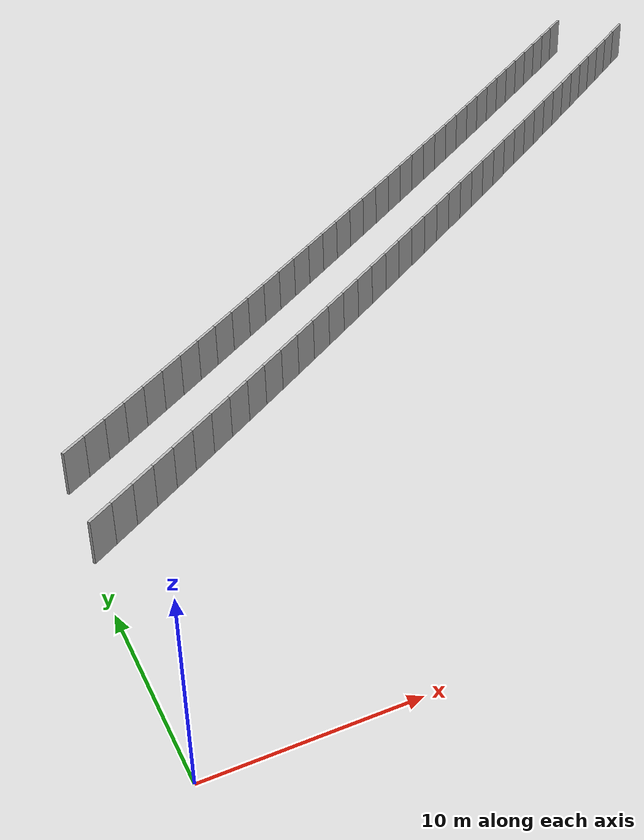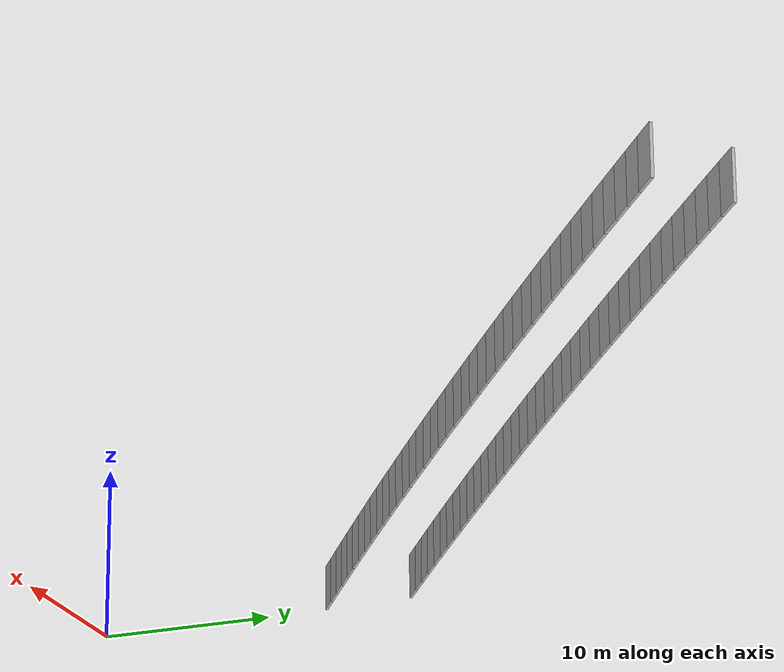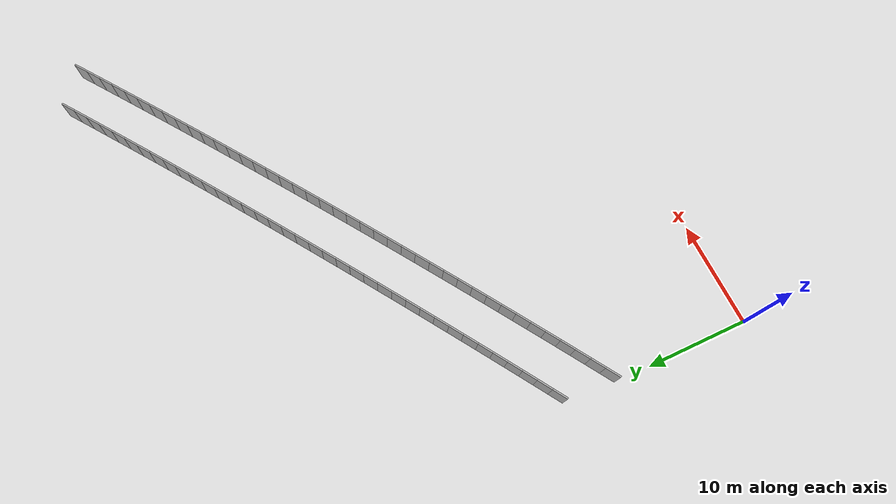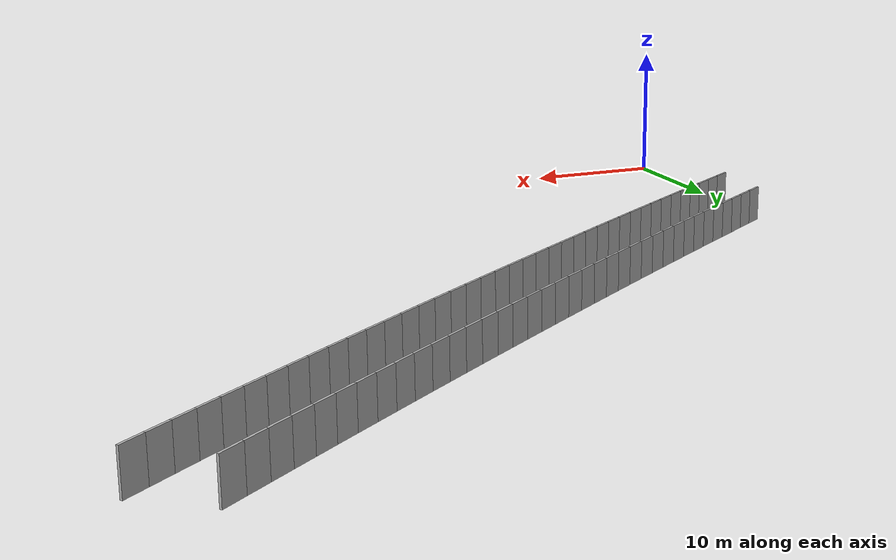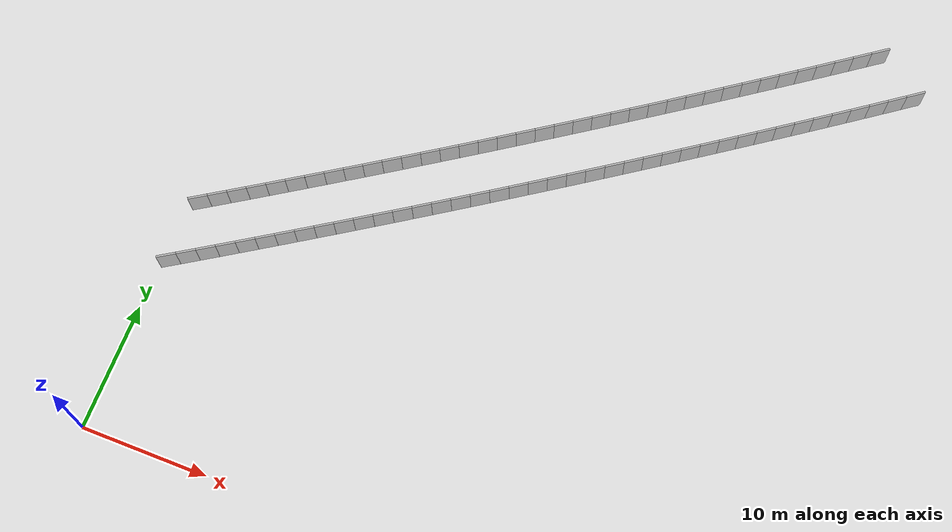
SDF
<?xml version="1.0" ?>
<sdf version="1.6">
  <model name="sps_3606">
    <pose frame="">0 0 0 0 -0 0</pose>
    <static>1</static>
    <self_collide>0</self_collide>
    <allow_auto_disable>0</allow_auto_disable>
    <link name="Wall4025">
      <kinematic>0</kinematic>
      <gravity>1</gravity>
      <self_collide>0</self_collide>
      <collision name="collision">
        <geometry>
          <box>
            <size>1.49655 0.15 2.5</size>
          </box>
        </geometry>
        <pose frame="">0 0 0 0 -0 0</pose>
      </collision>
      <visual name="visual">
        <geometry>
          <box>
            <size>1.49655 0.15 2.5</size>
          </box>
        </geometry>
        <pose frame="">0 0 0 0 -0 0</pose>
        <cast_shadows>1</cast_shadows>
        <transparency>0.0</transparency>
      </visual>
      <pose frame="">1.08144 19.0442 1.25 0 -0 0.571431</pose>
    </link>
    <link name="Wall4026">
      <kinematic>0</kinematic>
      <gravity>1</gravity>
      <self_collide>0</self_collide>
      <collision name="collision">
        <geometry>
          <box>
            <size>1.49672 0.15 2.5</size>
          </box>
        </geometry>
        <pose frame="">0 0 0 0 -0 0</pose>
      </collision>
      <visual name="visual">
        <geometry>
          <box>
            <size>1.49672 0.15 2.5</size>
          </box>
        </geometry>
        <pose frame="">0 0 0 0 -0 0</pose>
        <cast_shadows>1</cast_shadows>
        <transparency>0.0</transparency>
      </visual>
      <pose frame="">2.33974 19.8545 1.25 0 -0 0.572812</pose>
    </link>
    <link name="Wall4027">
      <kinematic>0</kinematic>
      <gravity>1</gravity>
      <self_collide>0</self_collide>
      <collision name="collision">
        <geometry>
          <box>
            <size>1.49635 0.15 2.5</size>
          </box>
        </geometry>
        <pose frame="">0 0 0 0 -0 0</pose>
      </collision>
      <visual name="visual">
        <geometry>
          <box>
            <size>1.49635 0.15 2.5</size>
          </box>
        </geometry>
        <pose frame="">0 0 0 0 -0 0</pose>
        <cast_shadows>1</cast_shadows>
        <transparency>0.0</transparency>
      </visual>
      <pose frame="">3.59676 20.6666 1.25 0 -0 0.574381</pose>
    </link>
    <link name="Wall4028">
      <kinematic>0</kinematic>
      <gravity>1</gravity>
      <self_collide>0</self_collide>
      <collision name="collision">
        <geometry>
          <box>
            <size>1.49665 0.15 2.5</size>
          </box>
        </geometry>
        <pose frame="">0 0 0 0 -0 0</pose>
      </collision>
      <visual name="visual">
        <geometry>
          <box>
            <size>1.49665 0.15 2.5</size>
          </box>
        </geometry>
        <pose frame="">0 0 0 0 -0 0</pose>
        <cast_shadows>1</cast_shadows>
        <transparency>0.0</transparency>
      </visual>
      <pose frame="">4.85238 21.4808 1.25 0 -0 0.576194</pose>
    </link>
    <link name="Wall4029">
      <kinematic>0</kinematic>
      <gravity>1</gravity>
      <self_collide>0</self_collide>
      <collision name="collision">
        <geometry>
          <box>
            <size>1.49649 0.15 2.5</size>
          </box>
        </geometry>
        <pose frame="">0 0 0 0 -0 0</pose>
      </collision>
      <visual name="visual">
        <geometry>
          <box>
            <size>1.49649 0.15 2.5</size>
          </box>
        </geometry>
        <pose frame="">0 0 0 0 -0 0</pose>
        <cast_shadows>1</cast_shadows>
        <transparency>0.0</transparency>
      </visual>
      <pose frame="">6.10677 22.297 1.25 0 -0 0.577528</pose>
    </link>
    <link name="Wall4030">
      <kinematic>0</kinematic>
      <gravity>1</gravity>
      <self_collide>0</self_collide>
      <collision name="collision">
        <geometry>
          <box>
            <size>1.49649 0.15 2.5</size>
          </box>
        </geometry>
        <pose frame="">0 0 0 0 -0 0</pose>
      </collision>
      <visual name="visual">
        <geometry>
          <box>
            <size>1.49649 0.15 2.5</size>
          </box>
        </geometry>
        <pose frame="">0 0 0 0 -0 0</pose>
        <cast_shadows>1</cast_shadows>
        <transparency>0.0</transparency>
      </visual>
      <pose frame="">7.35985 23.1151 1.25 0 -0 0.579236</pose>
    </link>
    <link name="Wall4031">
      <kinematic>0</kinematic>
      <gravity>1</gravity>
      <self_collide>0</self_collide>
      <collision name="collision">
        <geometry>
          <box>
            <size>1.49665 0.15 2.5</size>
          </box>
        </geometry>
        <pose frame="">0 0 0 0 -0 0</pose>
      </collision>
      <visual name="visual">
        <geometry>
          <box>
            <size>1.49665 0.15 2.5</size>
          </box>
        </geometry>
        <pose frame="">0 0 0 0 -0 0</pose>
        <cast_shadows>1</cast_shadows>
        <transparency>0.0</transparency>
      </visual>
      <pose frame="">8.61166 23.9353 1.25 0 -0 0.58082</pose>
    </link>
    <link name="Wall4032">
      <kinematic>0</kinematic>
      <gravity>1</gravity>
      <self_collide>0</self_collide>
      <collision name="collision">
        <geometry>
          <box>
            <size>1.49655 0.15 2.5</size>
          </box>
        </geometry>
        <pose frame="">0 0 0 0 -0 0</pose>
      </collision>
      <visual name="visual">
        <geometry>
          <box>
            <size>1.49655 0.15 2.5</size>
          </box>
        </geometry>
        <pose frame="">0 0 0 0 -0 0</pose>
        <cast_shadows>1</cast_shadows>
        <transparency>0.0</transparency>
      </visual>
      <pose frame="">9.86217 24.7575 1.25 0 -0 0.582426</pose>
    </link>
    <link name="Wall4033">
      <kinematic>0</kinematic>
      <gravity>1</gravity>
      <self_collide>0</self_collide>
      <collision name="collision">
        <geometry>
          <box>
            <size>1.49654 0.15 2.5</size>
          </box>
        </geometry>
        <pose frame="">0 0 0 0 -0 0</pose>
      </collision>
      <visual name="visual">
        <geometry>
          <box>
            <size>1.49654 0.15 2.5</size>
          </box>
        </geometry>
        <pose frame="">0 0 0 0 -0 0</pose>
        <cast_shadows>1</cast_shadows>
        <transparency>0.0</transparency>
      </visual>
      <pose frame="">11.1114 25.5816 1.25 0 -0 0.583897</pose>
    </link>
    <link name="Wall4034">
      <kinematic>0</kinematic>
      <gravity>1</gravity>
      <self_collide>0</self_collide>
      <collision name="collision">
        <geometry>
          <box>
            <size>1.49648 0.15 2.5</size>
          </box>
        </geometry>
        <pose frame="">0 0 0 0 -0 0</pose>
      </collision>
      <visual name="visual">
        <geometry>
          <box>
            <size>1.49648 0.15 2.5</size>
          </box>
        </geometry>
        <pose frame="">0 0 0 0 -0 0</pose>
        <cast_shadows>1</cast_shadows>
        <transparency>0.0</transparency>
      </visual>
      <pose frame="">12.3593 26.4076 1.25 0 -0 0.585537</pose>
    </link>
    <link name="Wall4035">
      <kinematic>0</kinematic>
      <gravity>1</gravity>
      <self_collide>0</self_collide>
      <collision name="collision">
        <geometry>
          <box>
            <size>1.49639 0.15 2.5</size>
          </box>
        </geometry>
        <pose frame="">0 0 0 0 -0 0</pose>
      </collision>
      <visual name="visual">
        <geometry>
          <box>
            <size>1.49639 0.15 2.5</size>
          </box>
        </geometry>
        <pose frame="">0 0 0 0 -0 0</pose>
        <cast_shadows>1</cast_shadows>
        <transparency>0.0</transparency>
      </visual>
      <pose frame="">13.6058 27.2356 1.25 0 -0 0.587143</pose>
    </link>
    <link name="Wall4036">
      <kinematic>0</kinematic>
      <gravity>1</gravity>
      <self_collide>0</self_collide>
      <collision name="collision">
        <geometry>
          <box>
            <size>1.4965 0.15 2.5</size>
          </box>
        </geometry>
        <pose frame="">0 0 0 0 -0 0</pose>
      </collision>
      <visual name="visual">
        <geometry>
          <box>
            <size>1.4965 0.15 2.5</size>
          </box>
        </geometry>
        <pose frame="">0 0 0 0 -0 0</pose>
        <cast_shadows>1</cast_shadows>
        <transparency>0.0</transparency>
      </visual>
      <pose frame="">14.8509 28.0656 1.25 0 -0 0.588715</pose>
    </link>
    <link name="Wall4037">
      <kinematic>0</kinematic>
      <gravity>1</gravity>
      <self_collide>0</self_collide>
      <collision name="collision">
        <geometry>
          <box>
            <size>1.4966 0.15 2.5</size>
          </box>
        </geometry>
        <pose frame="">0 0 0 0 -0 0</pose>
      </collision>
      <visual name="visual">
        <geometry>
          <box>
            <size>1.4966 0.15 2.5</size>
          </box>
        </geometry>
        <pose frame="">0 0 0 0 -0 0</pose>
        <cast_shadows>1</cast_shadows>
        <transparency>0.0</transparency>
      </visual>
      <pose frame="">16.0948 28.8977 1.25 0 -0 0.590434</pose>
    </link>
    <link name="Wall4038">
      <kinematic>0</kinematic>
      <gravity>1</gravity>
      <self_collide>0</self_collide>
      <collision name="collision">
        <geometry>
          <box>
            <size>1.49651 0.15 2.5</size>
          </box>
        </geometry>
        <pose frame="">0 0 0 0 -0 0</pose>
      </collision>
      <visual name="visual">
        <geometry>
          <box>
            <size>1.49651 0.15 2.5</size>
          </box>
        </geometry>
        <pose frame="">0 0 0 0 -0 0</pose>
        <cast_shadows>1</cast_shadows>
        <transparency>0.0</transparency>
      </visual>
      <pose frame="">17.3375 29.7317 1.25 0 -0 0.591803</pose>
    </link>
    <link name="Wall4039">
      <kinematic>0</kinematic>
      <gravity>1</gravity>
      <self_collide>0</self_collide>
      <collision name="collision">
        <geometry>
          <box>
            <size>1.49654 0.15 2.5</size>
          </box>
        </geometry>
        <pose frame="">0 0 0 0 -0 0</pose>
      </collision>
      <visual name="visual">
        <geometry>
          <box>
            <size>1.49654 0.15 2.5</size>
          </box>
        </geometry>
        <pose frame="">0 0 0 0 -0 0</pose>
        <cast_shadows>1</cast_shadows>
        <transparency>0.0</transparency>
      </visual>
      <pose frame="">18.5788 30.5676 1.25 0 -0 0.593511</pose>
    </link>
    <link name="Wall4040">
      <kinematic>0</kinematic>
      <gravity>1</gravity>
      <self_collide>0</self_collide>
      <collision name="collision">
        <geometry>
          <box>
            <size>1.49665 0.15 2.5</size>
          </box>
        </geometry>
        <pose frame="">0 0 0 0 -0 0</pose>
      </collision>
      <visual name="visual">
        <geometry>
          <box>
            <size>1.49665 0.15 2.5</size>
          </box>
        </geometry>
        <pose frame="">0 0 0 0 -0 0</pose>
        <cast_shadows>1</cast_shadows>
        <transparency>0.0</transparency>
      </visual>
      <pose frame="">19.8187 31.4056 1.25 0 -0 0.595083</pose>
    </link>
    <link name="Wall4041">
      <kinematic>0</kinematic>
      <gravity>1</gravity>
      <self_collide>0</self_collide>
      <collision name="collision">
        <geometry>
          <box>
            <size>1.49637 0.15 2.5</size>
          </box>
        </geometry>
        <pose frame="">0 0 0 0 -0 0</pose>
      </collision>
      <visual name="visual">
        <geometry>
          <box>
            <size>1.49637 0.15 2.5</size>
          </box>
        </geometry>
        <pose frame="">0 0 0 0 -0 0</pose>
        <cast_shadows>1</cast_shadows>
        <transparency>0.0</transparency>
      </visual>
      <pose frame="">21.0573 32.2455 1.25 0 -0 0.596691</pose>
    </link>
    <link name="Wall4042">
      <kinematic>0</kinematic>
      <gravity>1</gravity>
      <self_collide>0</self_collide>
      <collision name="collision">
        <geometry>
          <box>
            <size>1.49666 0.15 2.5</size>
          </box>
        </geometry>
        <pose frame="">0 0 0 0 -0 0</pose>
      </collision>
      <visual name="visual">
        <geometry>
          <box>
            <size>1.49666 0.15 2.5</size>
          </box>
        </geometry>
        <pose frame="">0 0 0 0 -0 0</pose>
        <cast_shadows>1</cast_shadows>
        <transparency>0.0</transparency>
      </visual>
      <pose frame="">22.2946 33.0873 1.25 0 -0 0.598137</pose>
    </link>
    <link name="Wall4043">
      <kinematic>0</kinematic>
      <gravity>1</gravity>
      <self_collide>0</self_collide>
      <collision name="collision">
        <geometry>
          <box>
            <size>1.49648 0.15 2.5</size>
          </box>
        </geometry>
        <pose frame="">0 0 0 0 -0 0</pose>
      </collision>
      <visual name="visual">
        <geometry>
          <box>
            <size>1.49648 0.15 2.5</size>
          </box>
        </geometry>
        <pose frame="">0 0 0 0 -0 0</pose>
        <cast_shadows>1</cast_shadows>
        <transparency>0.0</transparency>
      </visual>
      <pose frame="">23.5307 33.9311 1.25 0 -0 0.599846</pose>
    </link>
    <link name="Wall4044">
      <kinematic>0</kinematic>
      <gravity>1</gravity>
      <self_collide>0</self_collide>
      <collision name="collision">
        <geometry>
          <box>
            <size>1.49651 0.15 2.5</size>
          </box>
        </geometry>
        <pose frame="">0 0 0 0 -0 0</pose>
      </collision>
      <visual name="visual">
        <geometry>
          <box>
            <size>1.49651 0.15 2.5</size>
          </box>
        </geometry>
        <pose frame="">0 0 0 0 -0 0</pose>
        <cast_shadows>1</cast_shadows>
        <transparency>0.0</transparency>
      </visual>
      <pose frame="">24.7653 34.7768 1.25 0 -0 0.601317</pose>
    </link>
    <link name="Wall4045">
      <kinematic>0</kinematic>
      <gravity>1</gravity>
      <self_collide>0</self_collide>
      <collision name="collision">
        <geometry>
          <box>
            <size>1.49655 0.15 2.5</size>
          </box>
        </geometry>
        <pose frame="">0 0 0 0 -0 0</pose>
      </collision>
      <visual name="visual">
        <geometry>
          <box>
            <size>1.49655 0.15 2.5</size>
          </box>
        </geometry>
        <pose frame="">0 0 0 0 -0 0</pose>
        <cast_shadows>1</cast_shadows>
        <transparency>0.0</transparency>
      </visual>
      <pose frame="">25.9986 35.6245 1.25 0 -0 0.603081</pose>
    </link>
    <link name="Wall4046">
      <kinematic>0</kinematic>
      <gravity>1</gravity>
      <self_collide>0</self_collide>
      <collision name="collision">
        <geometry>
          <box>
            <size>1.49645 0.15 2.5</size>
          </box>
        </geometry>
        <pose frame="">0 0 0 0 -0 0</pose>
      </collision>
      <visual name="visual">
        <geometry>
          <box>
            <size>1.49645 0.15 2.5</size>
          </box>
        </geometry>
        <pose frame="">0 0 0 0 -0 0</pose>
        <cast_shadows>1</cast_shadows>
        <transparency>0.0</transparency>
      </visual>
      <pose frame="">27.2304 36.4742 1.25 0 -0 0.604564</pose>
    </link>
    <link name="Wall4047">
      <kinematic>0</kinematic>
      <gravity>1</gravity>
      <self_collide>0</self_collide>
      <collision name="collision">
        <geometry>
          <box>
            <size>1.49664 0.15 2.5</size>
          </box>
        </geometry>
        <pose frame="">0 0 0 0 -0 0</pose>
      </collision>
      <visual name="visual">
        <geometry>
          <box>
            <size>1.49664 0.15 2.5</size>
          </box>
        </geometry>
        <pose frame="">0 0 0 0 -0 0</pose>
        <cast_shadows>1</cast_shadows>
        <transparency>0.0</transparency>
      </visual>
      <pose frame="">28.4611 37.3258 1.25 0 -0 0.606112</pose>
    </link>
    <link name="Wall4048">
      <kinematic>0</kinematic>
      <gravity>1</gravity>
      <self_collide>0</self_collide>
      <collision name="collision">
        <geometry>
          <box>
            <size>1.49658 0.15 2.5</size>
          </box>
        </geometry>
        <pose frame="">0 0 0 0 -0 0</pose>
      </collision>
      <visual name="visual">
        <geometry>
          <box>
            <size>1.49658 0.15 2.5</size>
          </box>
        </geometry>
        <pose frame="">0 0 0 0 -0 0</pose>
        <cast_shadows>1</cast_shadows>
        <transparency>0.0</transparency>
      </visual>
      <pose frame="">29.6904 38.1794 1.25 0 -0 0.607776</pose>
    </link>
    <link name="Wall4049">
      <kinematic>0</kinematic>
      <gravity>1</gravity>
      <self_collide>0</self_collide>
      <collision name="collision">
        <geometry>
          <box>
            <size>1.4966 0.15 2.5</size>
          </box>
        </geometry>
        <pose frame="">0 0 0 0 -0 0</pose>
      </collision>
      <visual name="visual">
        <geometry>
          <box>
            <size>1.4966 0.15 2.5</size>
          </box>
        </geometry>
        <pose frame="">0 0 0 0 -0 0</pose>
        <cast_shadows>1</cast_shadows>
        <transparency>0.0</transparency>
      </visual>
      <pose frame="">30.9183 39.035 1.25 0 -0 0.609359</pose>
    </link>
    <link name="Wall4050">
      <kinematic>0</kinematic>
      <gravity>1</gravity>
      <self_collide>0</self_collide>
      <collision name="collision">
        <geometry>
          <box>
            <size>1.4966 0.15 2.5</size>
          </box>
        </geometry>
        <pose frame="">0 0 0 0 -0 0</pose>
      </collision>
      <visual name="visual">
        <geometry>
          <box>
            <size>1.4966 0.15 2.5</size>
          </box>
        </geometry>
        <pose frame="">0 0 0 0 -0 0</pose>
        <cast_shadows>1</cast_shadows>
        <transparency>0.0</transparency>
      </visual>
      <pose frame="">32.1449 39.8925 1.25 0 -0 0.610853</pose>
    </link>
    <link name="Wall4051">
      <kinematic>0</kinematic>
      <gravity>1</gravity>
      <self_collide>0</self_collide>
      <collision name="collision">
        <geometry>
          <box>
            <size>1.49651 0.15 2.5</size>
          </box>
        </geometry>
        <pose frame="">0 0 0 0 -0 0</pose>
      </collision>
      <visual name="visual">
        <geometry>
          <box>
            <size>1.49651 0.15 2.5</size>
          </box>
        </geometry>
        <pose frame="">0 0 0 0 -0 0</pose>
        <cast_shadows>1</cast_shadows>
        <transparency>0.0</transparency>
      </visual>
      <pose frame="">33.37 40.7519 1.25 0 -0 0.61254</pose>
    </link>
    <link name="Wall4052">
      <kinematic>0</kinematic>
      <gravity>1</gravity>
      <self_collide>0</self_collide>
      <collision name="collision">
        <geometry>
          <box>
            <size>1.49638 0.15 2.5</size>
          </box>
        </geometry>
        <pose frame="">0 0 0 0 -0 0</pose>
      </collision>
      <visual name="visual">
        <geometry>
          <box>
            <size>1.49638 0.15 2.5</size>
          </box>
        </geometry>
        <pose frame="">0 0 0 0 -0 0</pose>
        <cast_shadows>1</cast_shadows>
        <transparency>0.0</transparency>
      </visual>
      <pose frame="">34.5938 41.6132 1.25 0 -0 0.614047</pose>
    </link>
    <link name="Wall4053">
      <kinematic>0</kinematic>
      <gravity>1</gravity>
      <self_collide>0</self_collide>
      <collision name="collision">
        <geometry>
          <box>
            <size>1.49658 0.15 2.5</size>
          </box>
        </geometry>
        <pose frame="">0 0 0 0 -0 0</pose>
      </collision>
      <visual name="visual">
        <geometry>
          <box>
            <size>1.49658 0.15 2.5</size>
          </box>
        </geometry>
        <pose frame="">0 0 0 0 -0 0</pose>
        <cast_shadows>1</cast_shadows>
        <transparency>0.0</transparency>
      </visual>
      <pose frame="">35.8162 42.4764 1.25 0 -0 0.615651</pose>
    </link>
    <link name="Wall4054">
      <kinematic>0</kinematic>
      <gravity>1</gravity>
      <self_collide>0</self_collide>
      <collision name="collision">
        <geometry>
          <box>
            <size>1.49652 0.15 2.5</size>
          </box>
        </geometry>
        <pose frame="">0 0 0 0 -0 0</pose>
      </collision>
      <visual name="visual">
        <geometry>
          <box>
            <size>1.49652 0.15 2.5</size>
          </box>
        </geometry>
        <pose frame="">0 0 0 0 -0 0</pose>
        <cast_shadows>1</cast_shadows>
        <transparency>0.0</transparency>
      </visual>
      <pose frame="">37.0373 43.3416 1.25 0 -0 0.617225</pose>
    </link>
    <link name="Wall4055">
      <kinematic>0</kinematic>
      <gravity>1</gravity>
      <self_collide>0</self_collide>
      <collision name="collision">
        <geometry>
          <box>
            <size>1.49673 0.15 2.5</size>
          </box>
        </geometry>
        <pose frame="">0 0 0 0 -0 0</pose>
      </collision>
      <visual name="visual">
        <geometry>
          <box>
            <size>1.49673 0.15 2.5</size>
          </box>
        </geometry>
        <pose frame="">0 0 0 0 -0 0</pose>
        <cast_shadows>1</cast_shadows>
        <transparency>0.0</transparency>
      </visual>
      <pose frame="">38.2571 44.2088 1.25 0 -0 0.618827</pose>
    </link>
    <link name="Wall4056">
      <kinematic>0</kinematic>
      <gravity>1</gravity>
      <self_collide>0</self_collide>
      <collision name="collision">
        <geometry>
          <box>
            <size>1.49647 0.15 2.5</size>
          </box>
        </geometry>
        <pose frame="">0 0 0 0 -0 0</pose>
      </collision>
      <visual name="visual">
        <geometry>
          <box>
            <size>1.49647 0.15 2.5</size>
          </box>
        </geometry>
        <pose frame="">0 0 0 0 -0 0</pose>
        <cast_shadows>1</cast_shadows>
        <transparency>0.0</transparency>
      </visual>
      <pose frame="">39.4755 45.0779 1.25 0 -0 0.620406</pose>
    </link>
    <link name="Wall4057">
      <kinematic>0</kinematic>
      <gravity>1</gravity>
      <self_collide>0</self_collide>
      <collision name="collision">
        <geometry>
          <box>
            <size>1.49639 0.15 2.5</size>
          </box>
        </geometry>
        <pose frame="">0 0 0 0 -0 0</pose>
      </collision>
      <visual name="visual">
        <geometry>
          <box>
            <size>1.49639 0.15 2.5</size>
          </box>
        </geometry>
        <pose frame="">0 0 0 0 -0 0</pose>
        <cast_shadows>1</cast_shadows>
        <transparency>0.0</transparency>
      </visual>
      <pose frame="">40.6923 45.9488 1.25 0 -0 0.621947</pose>
    </link>
    <link name="Wall4058">
      <kinematic>0</kinematic>
      <gravity>1</gravity>
      <self_collide>0</self_collide>
      <collision name="collision">
        <geometry>
          <box>
            <size>1.4967 0.15 2.5</size>
          </box>
        </geometry>
        <pose frame="">0 0 0 0 -0 0</pose>
      </collision>
      <visual name="visual">
        <geometry>
          <box>
            <size>1.4967 0.15 2.5</size>
          </box>
        </geometry>
        <pose frame="">0 0 0 0 -0 0</pose>
        <cast_shadows>1</cast_shadows>
        <transparency>0.0</transparency>
      </visual>
      <pose frame="">41.908 46.8217 1.25 0 -0 0.623558</pose>
    </link>
    <link name="Wall4059">
      <kinematic>0</kinematic>
      <gravity>1</gravity>
      <self_collide>0</self_collide>
      <collision name="collision">
        <geometry>
          <box>
            <size>1.49643 0.15 2.5</size>
          </box>
        </geometry>
        <pose frame="">0 0 0 0 -0 0</pose>
      </collision>
      <visual name="visual">
        <geometry>
          <box>
            <size>1.49643 0.15 2.5</size>
          </box>
        </geometry>
        <pose frame="">0 0 0 0 -0 0</pose>
        <cast_shadows>1</cast_shadows>
        <transparency>0.0</transparency>
      </visual>
      <pose frame="">43.1222 47.6966 1.25 0 -0 0.625195</pose>
    </link>
    <link name="Wall4060">
      <kinematic>0</kinematic>
      <gravity>1</gravity>
      <self_collide>0</self_collide>
      <collision name="collision">
        <geometry>
          <box>
            <size>1.49652 0.15 2.5</size>
          </box>
        </geometry>
        <pose frame="">0 0 0 0 -0 0</pose>
      </collision>
      <visual name="visual">
        <geometry>
          <box>
            <size>1.49652 0.15 2.5</size>
          </box>
        </geometry>
        <pose frame="">0 0 0 0 -0 0</pose>
        <cast_shadows>1</cast_shadows>
        <transparency>0.0</transparency>
      </visual>
      <pose frame="">44.3349 48.5734 1.25 0 -0 0.626811</pose>
    </link>
    <link name="Wall4061">
      <kinematic>0</kinematic>
      <gravity>1</gravity>
      <self_collide>0</self_collide>
      <collision name="collision">
        <geometry>
          <box>
            <size>1.49656 0.15 2.5</size>
          </box>
        </geometry>
        <pose frame="">0 0 0 0 -0 0</pose>
      </collision>
      <visual name="visual">
        <geometry>
          <box>
            <size>1.49656 0.15 2.5</size>
          </box>
        </geometry>
        <pose frame="">0 0 0 0 -0 0</pose>
        <cast_shadows>1</cast_shadows>
        <transparency>0.0</transparency>
      </visual>
      <pose frame="">45.5463 49.4521 1.25 0 -0 0.628305</pose>
    </link>
    <link name="Wall7798">
      <kinematic>0</kinematic>
      <gravity>1</gravity>
      <self_collide>0</self_collide>
      <collision name="collision">
        <geometry>
          <box>
            <size>1.50314 0.15 2.5</size>
          </box>
        </geometry>
        <pose frame="">0 0 0 0 -0 0</pose>
      </collision>
      <visual name="visual">
        <geometry>
          <box>
            <size>1.50314 0.15 2.5</size>
          </box>
        </geometry>
        <pose frame="">0 0 0 0 -0 0</pose>
        <cast_shadows>1</cast_shadows>
        <transparency>0.0</transparency>
      </visual>
      <pose frame="">0.790366 13.9407 1.25 0 -0 0.56818</pose>
    </link>
    <link name="Wall7799">
      <kinematic>0</kinematic>
      <gravity>1</gravity>
      <self_collide>0</self_collide>
      <collision name="collision">
        <geometry>
          <box>
            <size>1.50312 0.15 2.5</size>
          </box>
        </geometry>
        <pose frame="">0 0 0 0 -0 0</pose>
      </collision>
      <visual name="visual">
        <geometry>
          <box>
            <size>1.50312 0.15 2.5</size>
          </box>
        </geometry>
        <pose frame="">0 0 0 0 -0 0</pose>
        <cast_shadows>1</cast_shadows>
        <transparency>0.0</transparency>
      </visual>
      <pose frame="">2.05675 14.7504 1.25 0 -0 0.569588</pose>
    </link>
    <link name="Wall7800">
      <kinematic>0</kinematic>
      <gravity>1</gravity>
      <self_collide>0</self_collide>
      <collision name="collision">
        <geometry>
          <box>
            <size>1.50312 0.15 2.5</size>
          </box>
        </geometry>
        <pose frame="">0 0 0 0 -0 0</pose>
      </collision>
      <visual name="visual">
        <geometry>
          <box>
            <size>1.50312 0.15 2.5</size>
          </box>
        </geometry>
        <pose frame="">0 0 0 0 -0 0</pose>
        <cast_shadows>1</cast_shadows>
        <transparency>0.0</transparency>
      </visual>
      <pose frame="">3.32186 15.5621 1.25 0 -0 0.571323</pose>
    </link>
    <link name="Wall7801">
      <kinematic>0</kinematic>
      <gravity>1</gravity>
      <self_collide>0</self_collide>
      <collision name="collision">
        <geometry>
          <box>
            <size>1.50315 0.15 2.5</size>
          </box>
        </geometry>
        <pose frame="">0 0 0 0 -0 0</pose>
      </collision>
      <visual name="visual">
        <geometry>
          <box>
            <size>1.50315 0.15 2.5</size>
          </box>
        </geometry>
        <pose frame="">0 0 0 0 -0 0</pose>
        <cast_shadows>1</cast_shadows>
        <transparency>0.0</transparency>
      </visual>
      <pose frame="">4.58565 16.3759 1.25 0 -0 0.572855</pose>
    </link>
    <link name="Wall7802">
      <kinematic>0</kinematic>
      <gravity>1</gravity>
      <self_collide>0</self_collide>
      <collision name="collision">
        <geometry>
          <box>
            <size>1.50281 0.15 2.5</size>
          </box>
        </geometry>
        <pose frame="">0 0 0 0 -0 0</pose>
      </collision>
      <visual name="visual">
        <geometry>
          <box>
            <size>1.50281 0.15 2.5</size>
          </box>
        </geometry>
        <pose frame="">0 0 0 0 -0 0</pose>
        <cast_shadows>1</cast_shadows>
        <transparency>0.0</transparency>
      </visual>
      <pose frame="">5.84804 17.1916 1.25 0 -0 0.574451</pose>
    </link>
    <link name="Wall7803">
      <kinematic>0</kinematic>
      <gravity>1</gravity>
      <self_collide>0</self_collide>
      <collision name="collision">
        <geometry>
          <box>
            <size>1.50322 0.15 2.5</size>
          </box>
        </geometry>
        <pose frame="">0 0 0 0 -0 0</pose>
      </collision>
      <visual name="visual">
        <geometry>
          <box>
            <size>1.50322 0.15 2.5</size>
          </box>
        </geometry>
        <pose frame="">0 0 0 0 -0 0</pose>
        <cast_shadows>1</cast_shadows>
        <transparency>0.0</transparency>
      </visual>
      <pose frame="">7.10915 18.0093 1.25 0 -0 0.576065</pose>
    </link>
    <link name="Wall7804">
      <kinematic>0</kinematic>
      <gravity>1</gravity>
      <self_collide>0</self_collide>
      <collision name="collision">
        <geometry>
          <box>
            <size>1.50311 0.15 2.5</size>
          </box>
        </geometry>
        <pose frame="">0 0 0 0 -0 0</pose>
      </collision>
      <visual name="visual">
        <geometry>
          <box>
            <size>1.50311 0.15 2.5</size>
          </box>
        </geometry>
        <pose frame="">0 0 0 0 -0 0</pose>
        <cast_shadows>1</cast_shadows>
        <transparency>0.0</transparency>
      </visual>
      <pose frame="">8.36907 18.8291 1.25 0 -0 0.577664</pose>
    </link>
    <link name="Wall7805">
      <kinematic>0</kinematic>
      <gravity>1</gravity>
      <self_collide>0</self_collide>
      <collision name="collision">
        <geometry>
          <box>
            <size>1.50316 0.15 2.5</size>
          </box>
        </geometry>
        <pose frame="">0 0 0 0 -0 0</pose>
      </collision>
      <visual name="visual">
        <geometry>
          <box>
            <size>1.50316 0.15 2.5</size>
          </box>
        </geometry>
        <pose frame="">0 0 0 0 -0 0</pose>
        <cast_shadows>1</cast_shadows>
        <transparency>0.0</transparency>
      </visual>
      <pose frame="">9.62768 19.6509 1.25 0 -0 0.579196</pose>
    </link>
    <link name="Wall7806">
      <kinematic>0</kinematic>
      <gravity>1</gravity>
      <self_collide>0</self_collide>
      <collision name="collision">
        <geometry>
          <box>
            <size>1.50302 0.15 2.5</size>
          </box>
        </geometry>
        <pose frame="">0 0 0 0 -0 0</pose>
      </collision>
      <visual name="visual">
        <geometry>
          <box>
            <size>1.50302 0.15 2.5</size>
          </box>
        </geometry>
        <pose frame="">0 0 0 0 -0 0</pose>
        <cast_shadows>1</cast_shadows>
        <transparency>0.0</transparency>
      </visual>
      <pose frame="">10.885 20.4746 1.25 0 -0 0.580761</pose>
    </link>
    <link name="Wall7807">
      <kinematic>0</kinematic>
      <gravity>1</gravity>
      <self_collide>0</self_collide>
      <collision name="collision">
        <geometry>
          <box>
            <size>1.50317 0.15 2.5</size>
          </box>
        </geometry>
        <pose frame="">0 0 0 0 -0 0</pose>
      </collision>
      <visual name="visual">
        <geometry>
          <box>
            <size>1.50317 0.15 2.5</size>
          </box>
        </geometry>
        <pose frame="">0 0 0 0 -0 0</pose>
        <cast_shadows>1</cast_shadows>
        <transparency>0.0</transparency>
      </visual>
      <pose frame="">12.141 21.3003 1.25 0 -0 0.582394</pose>
    </link>
    <link name="Wall7808">
      <kinematic>0</kinematic>
      <gravity>1</gravity>
      <self_collide>0</self_collide>
      <collision name="collision">
        <geometry>
          <box>
            <size>1.50301 0.15 2.5</size>
          </box>
        </geometry>
        <pose frame="">0 0 0 0 -0 0</pose>
      </collision>
      <visual name="visual">
        <geometry>
          <box>
            <size>1.50301 0.15 2.5</size>
          </box>
        </geometry>
        <pose frame="">0 0 0 0 -0 0</pose>
        <cast_shadows>1</cast_shadows>
        <transparency>0.0</transparency>
      </visual>
      <pose frame="">13.3956 22.1281 1.25 0 -0 0.584072</pose>
    </link>
    <link name="Wall7809">
      <kinematic>0</kinematic>
      <gravity>1</gravity>
      <self_collide>0</self_collide>
      <collision name="collision">
        <geometry>
          <box>
            <size>1.5031 0.15 2.5</size>
          </box>
        </geometry>
        <pose frame="">0 0 0 0 -0 0</pose>
      </collision>
      <visual name="visual">
        <geometry>
          <box>
            <size>1.5031 0.15 2.5</size>
          </box>
        </geometry>
        <pose frame="">0 0 0 0 -0 0</pose>
        <cast_shadows>1</cast_shadows>
        <transparency>0.0</transparency>
      </visual>
      <pose frame="">14.6489 22.9578 1.25 0 -0 0.585491</pose>
    </link>
    <link name="Wall7810">
      <kinematic>0</kinematic>
      <gravity>1</gravity>
      <self_collide>0</self_collide>
      <collision name="collision">
        <geometry>
          <box>
            <size>1.50317 0.15 2.5</size>
          </box>
        </geometry>
        <pose frame="">0 0 0 0 -0 0</pose>
      </collision>
      <visual name="visual">
        <geometry>
          <box>
            <size>1.50317 0.15 2.5</size>
          </box>
        </geometry>
        <pose frame="">0 0 0 0 -0 0</pose>
        <cast_shadows>1</cast_shadows>
        <transparency>0.0</transparency>
      </visual>
      <pose frame="">15.9009 23.7895 1.25 0 -0 0.587169</pose>
    </link>
    <link name="Wall7811">
      <kinematic>0</kinematic>
      <gravity>1</gravity>
      <self_collide>0</self_collide>
      <collision name="collision">
        <geometry>
          <box>
            <size>1.50301 0.15 2.5</size>
          </box>
        </geometry>
        <pose frame="">0 0 0 0 -0 0</pose>
      </collision>
      <visual name="visual">
        <geometry>
          <box>
            <size>1.50301 0.15 2.5</size>
          </box>
        </geometry>
        <pose frame="">0 0 0 0 -0 0</pose>
        <cast_shadows>1</cast_shadows>
        <transparency>0.0</transparency>
      </visual>
      <pose frame="">17.1516 24.6232 1.25 0 -0 0.588701</pose>
    </link>
    <link name="Wall7812">
      <kinematic>0</kinematic>
      <gravity>1</gravity>
      <self_collide>0</self_collide>
      <collision name="collision">
        <geometry>
          <box>
            <size>1.50307 0.15 2.5</size>
          </box>
        </geometry>
        <pose frame="">0 0 0 0 -0 0</pose>
      </collision>
      <visual name="visual">
        <geometry>
          <box>
            <size>1.50307 0.15 2.5</size>
          </box>
        </geometry>
        <pose frame="">0 0 0 0 -0 0</pose>
        <cast_shadows>1</cast_shadows>
        <transparency>0.0</transparency>
      </visual>
      <pose frame="">18.4009 25.4589 1.25 0 -0 0.590435</pose>
    </link>
    <link name="Wall7813">
      <kinematic>0</kinematic>
      <gravity>1</gravity>
      <self_collide>0</self_collide>
      <collision name="collision">
        <geometry>
          <box>
            <size>1.50313 0.15 2.5</size>
          </box>
        </geometry>
        <pose frame="">0 0 0 0 -0 0</pose>
      </collision>
      <visual name="visual">
        <geometry>
          <box>
            <size>1.50313 0.15 2.5</size>
          </box>
        </geometry>
        <pose frame="">0 0 0 0 -0 0</pose>
        <cast_shadows>1</cast_shadows>
        <transparency>0.0</transparency>
      </visual>
      <pose frame="">19.6489 26.2966 1.25 0 -0 0.591877</pose>
    </link>
    <link name="Wall7814">
      <kinematic>0</kinematic>
      <gravity>1</gravity>
      <self_collide>0</self_collide>
      <collision name="collision">
        <geometry>
          <box>
            <size>1.5032 0.15 2.5</size>
          </box>
        </geometry>
        <pose frame="">0 0 0 0 -0 0</pose>
      </collision>
      <visual name="visual">
        <geometry>
          <box>
            <size>1.5032 0.15 2.5</size>
          </box>
        </geometry>
        <pose frame="">0 0 0 0 -0 0</pose>
        <cast_shadows>1</cast_shadows>
        <transparency>0.0</transparency>
      </visual>
      <pose frame="">20.8958 27.1362 1.25 0 -0 0.593408</pose>
    </link>
    <link name="Wall7815">
      <kinematic>0</kinematic>
      <gravity>1</gravity>
      <self_collide>0</self_collide>
      <collision name="collision">
        <geometry>
          <box>
            <size>1.50286 0.15 2.5</size>
          </box>
        </geometry>
        <pose frame="">0 0 0 0 -0 0</pose>
      </collision>
      <visual name="visual">
        <geometry>
          <box>
            <size>1.50286 0.15 2.5</size>
          </box>
        </geometry>
        <pose frame="">0 0 0 0 -0 0</pose>
        <cast_shadows>1</cast_shadows>
        <transparency>0.0</transparency>
      </visual>
      <pose frame="">22.1412 27.9777 1.25 0 -0 0.595031</pose>
    </link>
    <link name="Wall7816">
      <kinematic>0</kinematic>
      <gravity>1</gravity>
      <self_collide>0</self_collide>
      <collision name="collision">
        <geometry>
          <box>
            <size>1.50314 0.15 2.5</size>
          </box>
        </geometry>
        <pose frame="">0 0 0 0 -0 0</pose>
      </collision>
      <visual name="visual">
        <geometry>
          <box>
            <size>1.50314 0.15 2.5</size>
          </box>
        </geometry>
        <pose frame="">0 0 0 0 -0 0</pose>
        <cast_shadows>1</cast_shadows>
        <transparency>0.0</transparency>
      </visual>
      <pose frame="">23.3852 28.8212 1.25 0 -0 0.596674</pose>
    </link>
    <link name="Wall7817">
      <kinematic>0</kinematic>
      <gravity>1</gravity>
      <self_collide>0</self_collide>
      <collision name="collision">
        <geometry>
          <box>
            <size>1.50301 0.15 2.5</size>
          </box>
        </geometry>
        <pose frame="">0 0 0 0 -0 0</pose>
      </collision>
      <visual name="visual">
        <geometry>
          <box>
            <size>1.50301 0.15 2.5</size>
          </box>
        </geometry>
        <pose frame="">0 0 0 0 -0 0</pose>
        <cast_shadows>1</cast_shadows>
        <transparency>0.0</transparency>
      </visual>
      <pose frame="">24.6279 29.6667 1.25 0 -0 0.598207</pose>
    </link>
    <link name="Wall7818">
      <kinematic>0</kinematic>
      <gravity>1</gravity>
      <self_collide>0</self_collide>
      <collision name="collision">
        <geometry>
          <box>
            <size>1.5031 0.15 2.5</size>
          </box>
        </geometry>
        <pose frame="">0 0 0 0 -0 0</pose>
      </collision>
      <visual name="visual">
        <geometry>
          <box>
            <size>1.5031 0.15 2.5</size>
          </box>
        </geometry>
        <pose frame="">0 0 0 0 -0 0</pose>
        <cast_shadows>1</cast_shadows>
        <transparency>0.0</transparency>
      </visual>
      <pose frame="">25.8693 30.5141 1.25 0 -0 0.599738</pose>
    </link>
    <link name="Wall7819">
      <kinematic>0</kinematic>
      <gravity>1</gravity>
      <self_collide>0</self_collide>
      <collision name="collision">
        <geometry>
          <box>
            <size>1.50303 0.15 2.5</size>
          </box>
        </geometry>
        <pose frame="">0 0 0 0 -0 0</pose>
      </collision>
      <visual name="visual">
        <geometry>
          <box>
            <size>1.50303 0.15 2.5</size>
          </box>
        </geometry>
        <pose frame="">0 0 0 0 -0 0</pose>
        <cast_shadows>1</cast_shadows>
        <transparency>0.0</transparency>
      </visual>
      <pose frame="">27.1092 31.3636 1.25 0 -0 0.601541</pose>
    </link>
    <link name="Wall7820">
      <kinematic>0</kinematic>
      <gravity>1</gravity>
      <self_collide>0</self_collide>
      <collision name="collision">
        <geometry>
          <box>
            <size>1.50326 0.15 2.5</size>
          </box>
        </geometry>
        <pose frame="">0 0 0 0 -0 0</pose>
      </collision>
      <visual name="visual">
        <geometry>
          <box>
            <size>1.50326 0.15 2.5</size>
          </box>
        </geometry>
        <pose frame="">0 0 0 0 -0 0</pose>
        <cast_shadows>1</cast_shadows>
        <transparency>0.0</transparency>
      </visual>
      <pose frame="">28.348 32.2151 1.25 0 -0 0.602913</pose>
    </link>
    <link name="Wall7821">
      <kinematic>0</kinematic>
      <gravity>1</gravity>
      <self_collide>0</self_collide>
      <collision name="collision">
        <geometry>
          <box>
            <size>1.50302 0.15 2.5</size>
          </box>
        </geometry>
        <pose frame="">0 0 0 0 -0 0</pose>
      </collision>
      <visual name="visual">
        <geometry>
          <box>
            <size>1.50302 0.15 2.5</size>
          </box>
        </geometry>
        <pose frame="">0 0 0 0 -0 0</pose>
        <cast_shadows>1</cast_shadows>
        <transparency>0.0</transparency>
      </visual>
      <pose frame="">29.5853 33.0685 1.25 0 -0 0.604605</pose>
    </link>
    <link name="Wall7822">
      <kinematic>0</kinematic>
      <gravity>1</gravity>
      <self_collide>0</self_collide>
      <collision name="collision">
        <geometry>
          <box>
            <size>1.50321 0.15 2.5</size>
          </box>
        </geometry>
        <pose frame="">0 0 0 0 -0 0</pose>
      </collision>
      <visual name="visual">
        <geometry>
          <box>
            <size>1.50321 0.15 2.5</size>
          </box>
        </geometry>
        <pose frame="">0 0 0 0 -0 0</pose>
        <cast_shadows>1</cast_shadows>
        <transparency>0.0</transparency>
      </visual>
      <pose frame="">30.8213 33.9239 1.25 0 -0 0.606146</pose>
    </link>
    <link name="Wall7823">
      <kinematic>0</kinematic>
      <gravity>1</gravity>
      <self_collide>0</self_collide>
      <collision name="collision">
        <geometry>
          <box>
            <size>1.5031 0.15 2.5</size>
          </box>
        </geometry>
        <pose frame="">0 0 0 0 -0 0</pose>
      </collision>
      <visual name="visual">
        <geometry>
          <box>
            <size>1.5031 0.15 2.5</size>
          </box>
        </geometry>
        <pose frame="">0 0 0 0 -0 0</pose>
        <cast_shadows>1</cast_shadows>
        <transparency>0.0</transparency>
      </visual>
      <pose frame="">32.0561 34.7812 1.25 0 -0 0.607679</pose>
    </link>
    <link name="Wall7824">
      <kinematic>0</kinematic>
      <gravity>1</gravity>
      <self_collide>0</self_collide>
      <collision name="collision">
        <geometry>
          <box>
            <size>1.50305 0.15 2.5</size>
          </box>
        </geometry>
        <pose frame="">0 0 0 0 -0 0</pose>
      </collision>
      <visual name="visual">
        <geometry>
          <box>
            <size>1.50305 0.15 2.5</size>
          </box>
        </geometry>
        <pose frame="">0 0 0 0 -0 0</pose>
        <cast_shadows>1</cast_shadows>
        <transparency>0.0</transparency>
      </visual>
      <pose frame="">33.2893 35.6405 1.25 0 -0 0.609482</pose>
    </link>
    <link name="Wall7825">
      <kinematic>0</kinematic>
      <gravity>1</gravity>
      <self_collide>0</self_collide>
      <collision name="collision">
        <geometry>
          <box>
            <size>1.50311 0.15 2.5</size>
          </box>
        </geometry>
        <pose frame="">0 0 0 0 -0 0</pose>
      </collision>
      <visual name="visual">
        <geometry>
          <box>
            <size>1.50311 0.15 2.5</size>
          </box>
        </geometry>
        <pose frame="">0 0 0 0 -0 0</pose>
        <cast_shadows>1</cast_shadows>
        <transparency>0.0</transparency>
      </visual>
      <pose frame="">34.5212 36.5017 1.25 0 -0 0.610743</pose>
    </link>
    <link name="Wall7826">
      <kinematic>0</kinematic>
      <gravity>1</gravity>
      <self_collide>0</self_collide>
      <collision name="collision">
        <geometry>
          <box>
            <size>1.50308 0.15 2.5</size>
          </box>
        </geometry>
        <pose frame="">0 0 0 0 -0 0</pose>
      </collision>
      <visual name="visual">
        <geometry>
          <box>
            <size>1.50308 0.15 2.5</size>
          </box>
        </geometry>
        <pose frame="">0 0 0 0 -0 0</pose>
        <cast_shadows>1</cast_shadows>
        <transparency>0.0</transparency>
      </visual>
      <pose frame="">35.7518 37.3648 1.25 0 -0 0.612546</pose>
    </link>
    <link name="Wall7827">
      <kinematic>0</kinematic>
      <gravity>1</gravity>
      <self_collide>0</self_collide>
      <collision name="collision">
        <geometry>
          <box>
            <size>1.50298 0.15 2.5</size>
          </box>
        </geometry>
        <pose frame="">0 0 0 0 -0 0</pose>
      </collision>
      <visual name="visual">
        <geometry>
          <box>
            <size>1.50298 0.15 2.5</size>
          </box>
        </geometry>
        <pose frame="">0 0 0 0 -0 0</pose>
        <cast_shadows>1</cast_shadows>
        <transparency>0.0</transparency>
      </visual>
      <pose frame="">36.9809 38.2299 1.25 0 -0 0.614079</pose>
    </link>
    <link name="Wall7828">
      <kinematic>0</kinematic>
      <gravity>1</gravity>
      <self_collide>0</self_collide>
      <collision name="collision">
        <geometry>
          <box>
            <size>1.50307 0.15 2.5</size>
          </box>
        </geometry>
        <pose frame="">0 0 0 0 -0 0</pose>
      </collision>
      <visual name="visual">
        <geometry>
          <box>
            <size>1.50307 0.15 2.5</size>
          </box>
        </geometry>
        <pose frame="">0 0 0 0 -0 0</pose>
        <cast_shadows>1</cast_shadows>
        <transparency>0.0</transparency>
      </visual>
      <pose frame="">38.2085 39.097 1.25 0 -0 0.615779</pose>
    </link>
    <link name="Wall7829">
      <kinematic>0</kinematic>
      <gravity>1</gravity>
      <self_collide>0</self_collide>
      <collision name="collision">
        <geometry>
          <box>
            <size>1.50318 0.15 2.5</size>
          </box>
        </geometry>
        <pose frame="">0 0 0 0 -0 0</pose>
      </collision>
      <visual name="visual">
        <geometry>
          <box>
            <size>1.50318 0.15 2.5</size>
          </box>
        </geometry>
        <pose frame="">0 0 0 0 -0 0</pose>
        <cast_shadows>1</cast_shadows>
        <transparency>0.0</transparency>
      </visual>
      <pose frame="">39.435 39.9661 1.25 0 -0 0.617219</pose>
    </link>
    <link name="Wall7830">
      <kinematic>0</kinematic>
      <gravity>1</gravity>
      <self_collide>0</self_collide>
      <collision name="collision">
        <geometry>
          <box>
            <size>1.50305 0.15 2.5</size>
          </box>
        </geometry>
        <pose frame="">0 0 0 0 -0 0</pose>
      </collision>
      <visual name="visual">
        <geometry>
          <box>
            <size>1.50305 0.15 2.5</size>
          </box>
        </geometry>
        <pose frame="">0 0 0 0 -0 0</pose>
        <cast_shadows>1</cast_shadows>
        <transparency>0.0</transparency>
      </visual>
      <pose frame="">40.6601 40.837 1.25 0 -0 0.618777</pose>
    </link>
    <link name="Wall7831">
      <kinematic>0</kinematic>
      <gravity>1</gravity>
      <self_collide>0</self_collide>
      <collision name="collision">
        <geometry>
          <box>
            <size>1.50294 0.15 2.5</size>
          </box>
        </geometry>
        <pose frame="">0 0 0 0 -0 0</pose>
      </collision>
      <visual name="visual">
        <geometry>
          <box>
            <size>1.50294 0.15 2.5</size>
          </box>
        </geometry>
        <pose frame="">0 0 0 0 -0 0</pose>
        <cast_shadows>1</cast_shadows>
        <transparency>0.0</transparency>
      </visual>
      <pose frame="">41.8837 41.7098 1.25 0 -0 0.620424</pose>
    </link>
    <link name="Wall7832">
      <kinematic>0</kinematic>
      <gravity>1</gravity>
      <self_collide>0</self_collide>
      <collision name="collision">
        <geometry>
          <box>
            <size>1.50307 0.15 2.5</size>
          </box>
        </geometry>
        <pose frame="">0 0 0 0 -0 0</pose>
      </collision>
      <visual name="visual">
        <geometry>
          <box>
            <size>1.50307 0.15 2.5</size>
          </box>
        </geometry>
        <pose frame="">0 0 0 0 -0 0</pose>
        <cast_shadows>1</cast_shadows>
        <transparency>0.0</transparency>
      </visual>
      <pose frame="">43.1059 42.5846 1.25 0 -0 0.62201</pose>
    </link>
    <link name="Wall7833">
      <kinematic>0</kinematic>
      <gravity>1</gravity>
      <self_collide>0</self_collide>
      <collision name="collision">
        <geometry>
          <box>
            <size>1.5033 0.15 2.5</size>
          </box>
        </geometry>
        <pose frame="">0 0 0 0 -0 0</pose>
      </collision>
      <visual name="visual">
        <geometry>
          <box>
            <size>1.5033 0.15 2.5</size>
          </box>
        </geometry>
        <pose frame="">0 0 0 0 -0 0</pose>
        <cast_shadows>1</cast_shadows>
        <transparency>0.0</transparency>
      </visual>
      <pose frame="">44.3268 43.4614 1.25 0 -0 0.623549</pose>
    </link>
    <link name="Wall7834">
      <kinematic>0</kinematic>
      <gravity>1</gravity>
      <self_collide>0</self_collide>
      <collision name="collision">
        <geometry>
          <box>
            <size>1.50309 0.15 2.5</size>
          </box>
        </geometry>
        <pose frame="">0 0 0 0 -0 0</pose>
      </collision>
      <visual name="visual">
        <geometry>
          <box>
            <size>1.50309 0.15 2.5</size>
          </box>
        </geometry>
        <pose frame="">0 0 0 0 -0 0</pose>
        <cast_shadows>1</cast_shadows>
        <transparency>0.0</transparency>
      </visual>
      <pose frame="">45.5464 44.3401 1.25 0 -0 0.625154</pose>
    </link>
    <link name="Wall7835">
      <kinematic>0</kinematic>
      <gravity>1</gravity>
      <self_collide>0</self_collide>
      <collision name="collision">
        <geometry>
          <box>
            <size>1.50309 0.15 2.5</size>
          </box>
        </geometry>
        <pose frame="">0 0 0 0 -0 0</pose>
      </collision>
      <visual name="visual">
        <geometry>
          <box>
            <size>1.50309 0.15 2.5</size>
          </box>
        </geometry>
        <pose frame="">0 0 0 0 -0 0</pose>
        <cast_shadows>1</cast_shadows>
        <transparency>0.0</transparency>
      </visual>
      <pose frame="">46.7645 45.2207 1.25 0 -0 0.626754</pose>
    </link>
    <link name="Wall7836">
      <kinematic>0</kinematic>
      <gravity>1</gravity>
      <self_collide>0</self_collide>
      <collision name="collision">
        <geometry>
          <box>
            <size>1.50314 0.15 2.5</size>
          </box>
        </geometry>
        <pose frame="">0 0 0 0 -0 0</pose>
      </collision>
      <visual name="visual">
        <geometry>
          <box>
            <size>1.50314 0.15 2.5</size>
          </box>
        </geometry>
        <pose frame="">0 0 0 0 -0 0</pose>
        <cast_shadows>1</cast_shadows>
        <transparency>0.0</transparency>
      </visual>
      <pose frame="">47.9813 46.1033 1.25 0 -0 0.628387</pose>
    </link>
    <link name="Wall7837">
      <kinematic>0</kinematic>
      <gravity>1</gravity>
      <self_collide>0</self_collide>
      <collision name="collision">
        <geometry>
          <box>
            <size>1.50304 0.15 2.5</size>
          </box>
        </geometry>
        <pose frame="">0 0 0 0 -0 0</pose>
      </collision>
      <visual name="visual">
        <geometry>
          <box>
            <size>1.50304 0.15 2.5</size>
          </box>
        </geometry>
        <pose frame="">0 0 0 0 -0 0</pose>
        <cast_shadows>1</cast_shadows>
        <transparency>0.0</transparency>
      </visual>
      <pose frame="">49.1966 46.9878 1.25 0 -0 0.629889</pose>
    </link>
  </model>
</sdf>
